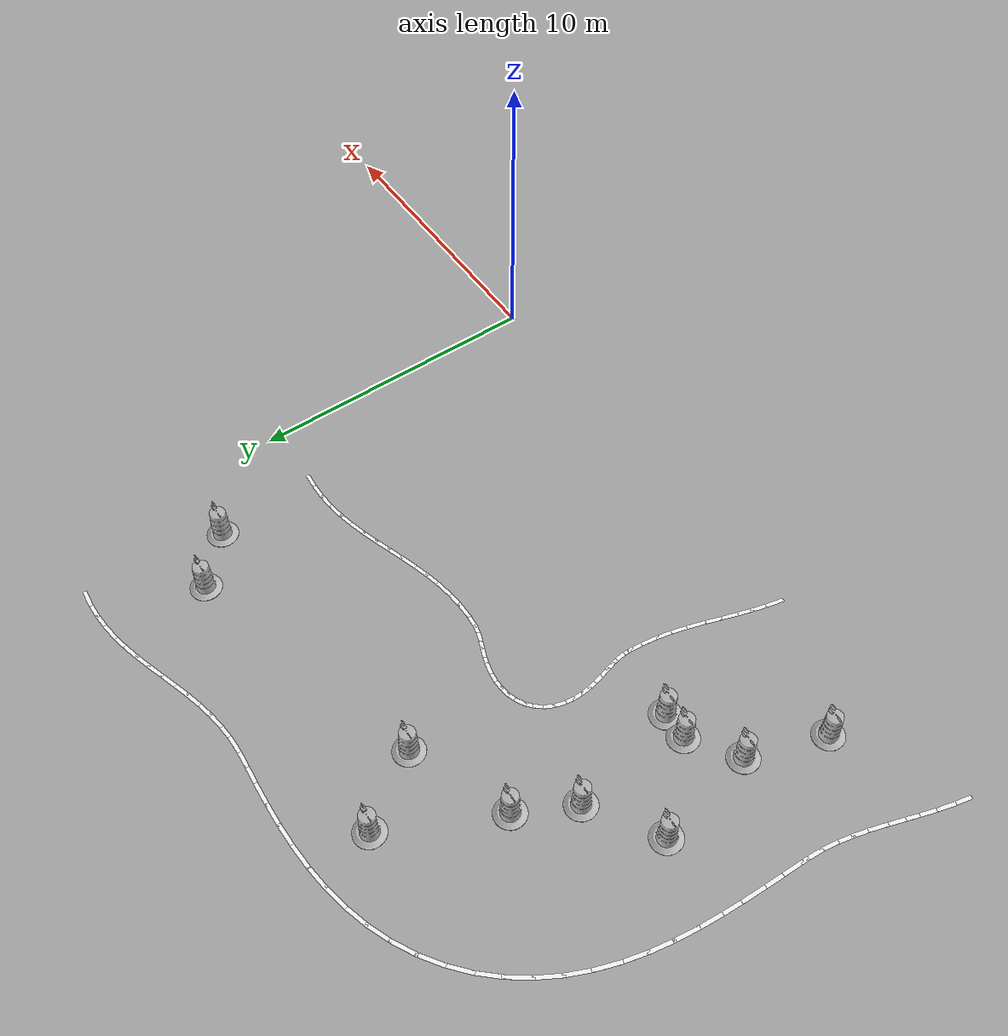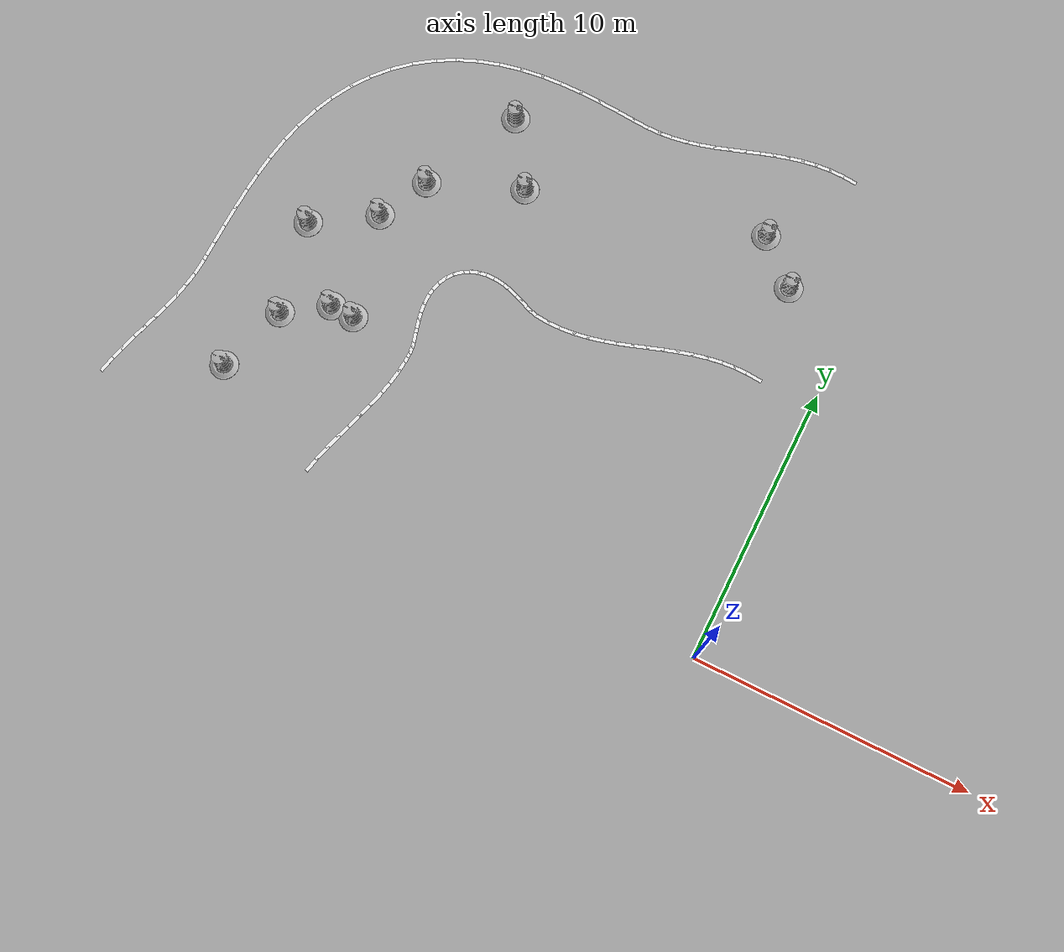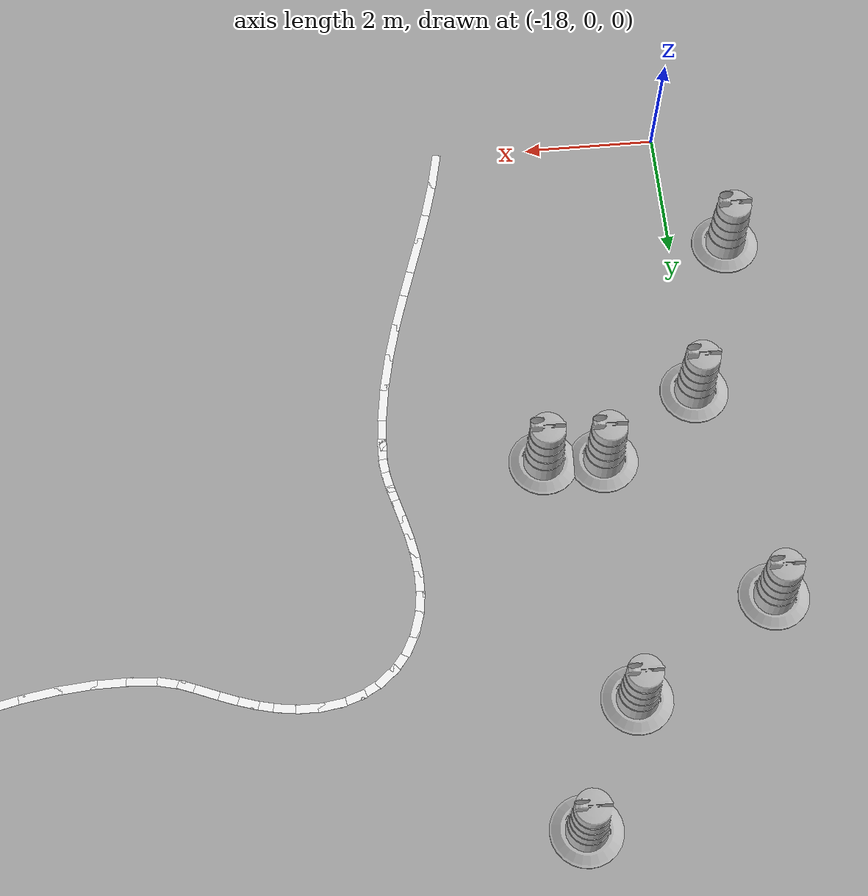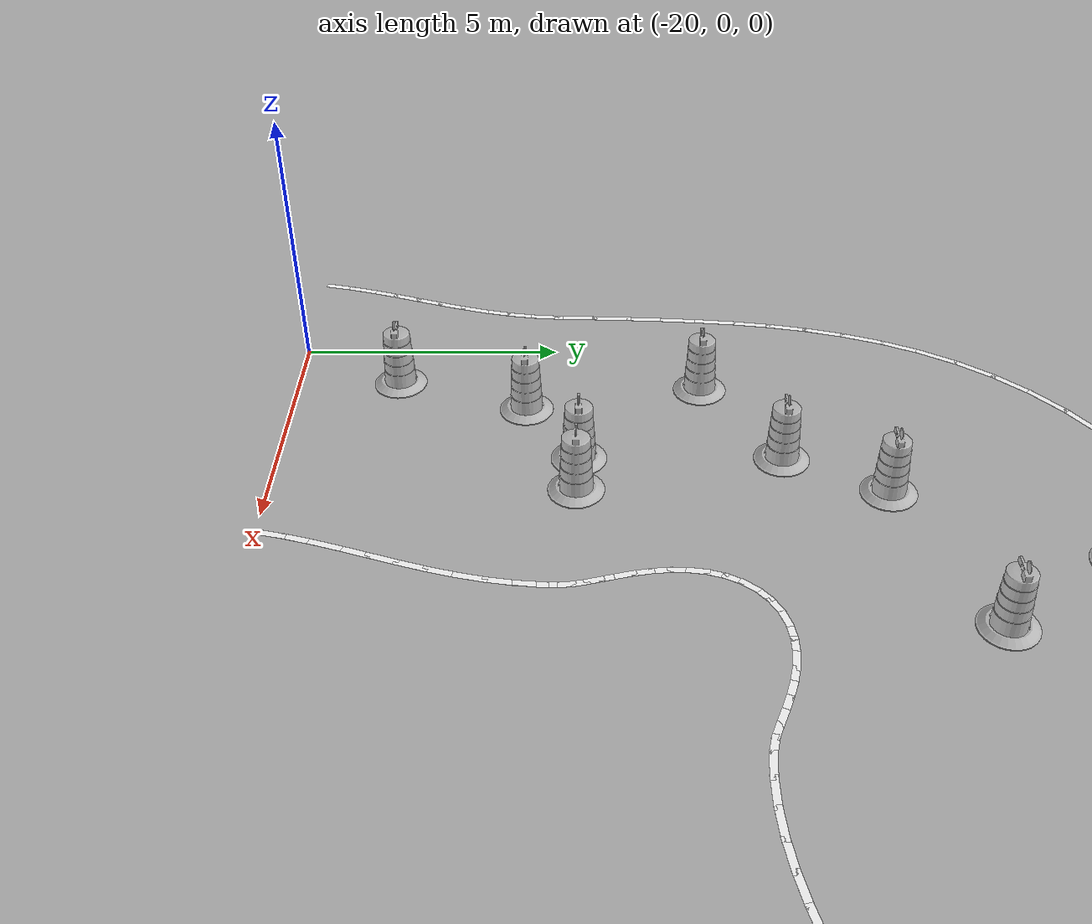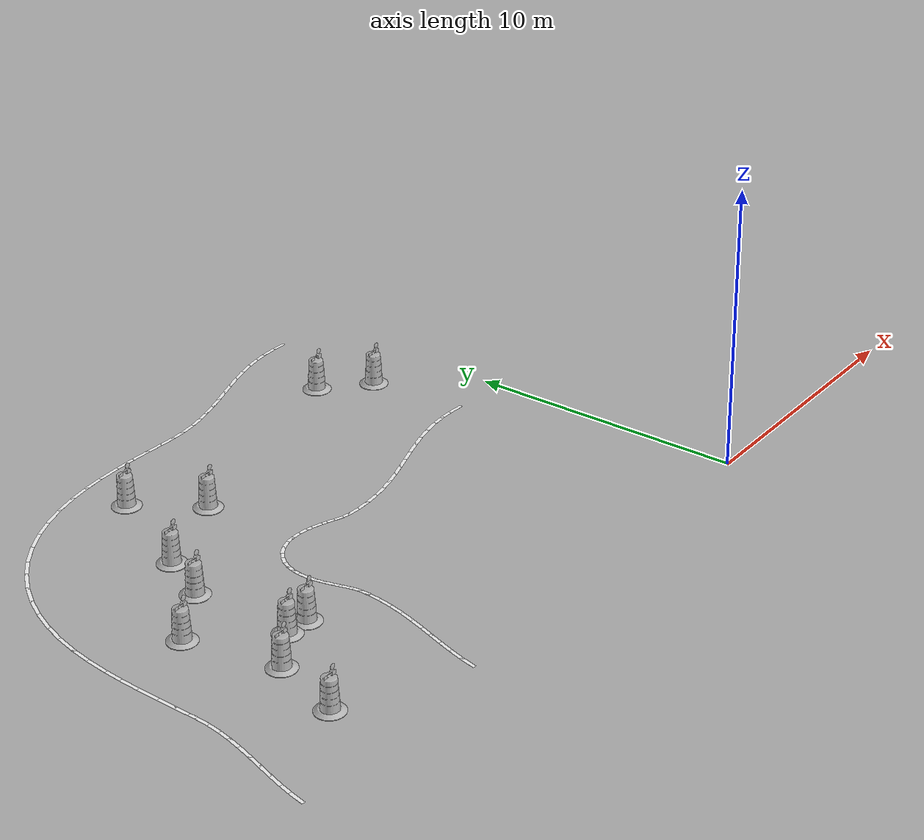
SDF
<sdf version="1.6">
 <model name="orange_igvc">
  <static>true</static>
  <link name="construction_barrel2">
   <pose>-12.34 12.27 0.05 0 0 0</pose>
   <visual name="visual">
    <geometry><mesh><uri>model://construction_barrel/meshes/construction_barrel.dae</uri></mesh></geometry>
   </visual>
   <collision name="collision">
    <geometry><mesh><uri>model://construction_barrel/meshes/construction_barrel.dae</uri></mesh></geometry>
   </collision>
  </link>
  <link name="construction_barrel3">
   <pose>-2.50 13.08 0.05 0 0 0</pose>
   <visual name="visual">
    <geometry><mesh><uri>model://construction_barrel/meshes/construction_barrel.dae</uri></mesh></geometry>
   </visual>
   <collision name="collision">
    <geometry><mesh><uri>model://construction_barrel/meshes/construction_barrel.dae</uri></mesh></geometry>
   </collision>
  </link>
  <link name="construction_barrel5">
   <pose>-16.51 5.51 0.05 0 0 0</pose>
   <visual name="visual">
    <geometry><mesh><uri>model://construction_barrel/meshes/construction_barrel.dae</uri></mesh></geometry>
   </visual>
   <collision name="collision">
    <geometry><mesh><uri>model://construction_barrel/meshes/construction_barrel.dae</uri></mesh></geometry>
   </collision>
  </link>
  <link name="construction_barrel8">
   <pose>-13.81 14.50 0.05 0 0 0</pose>
   <visual name="visual">
    <geometry><mesh><uri>model://construction_barrel/meshes/construction_barrel.dae</uri></mesh></geometry>
   </visual>
   <collision name="collision">
    <geometry><mesh><uri>model://construction_barrel/meshes/construction_barrel.dae</uri></mesh></geometry>
   </collision>
  </link>
  <link name="construction_barrel13">
   <pose>-15.63 5.47 0.05 0 0 0</pose>
   <visual name="visual">
    <geometry><mesh><uri>model://construction_barrel/meshes/construction_barrel.dae</uri></mesh></geometry>
   </visual>
   <collision name="collision">
    <geometry><mesh><uri>model://construction_barrel/meshes/construction_barrel.dae</uri></mesh></geometry>
   </collision>
  </link>
  <link name="construction_barrel14">
   <pose>-4.00 14.46 0.05 0 0 0</pose>
   <visual name="visual">
    <geometry><mesh><uri>model://construction_barrel/meshes/construction_barrel.dae</uri></mesh></geometry>
   </visual>
   <collision name="collision">
    <geometry><mesh><uri>model://construction_barrel/meshes/construction_barrel.dae</uri></mesh></geometry>
   </collision>
  </link>
  <link name="construction_barrel15">
   <pose>-18.85 2.00 0.05 0 0 0</pose>
   <visual name="visual">
    <geometry><mesh><uri>model://construction_barrel/meshes/construction_barrel.dae</uri></mesh></geometry>
   </visual>
   <collision name="collision">
    <geometry><mesh><uri>model://construction_barrel/meshes/construction_barrel.dae</uri></mesh></geometry>
   </collision>
  </link>
  <link name="construction_barrel17">
   <pose>-15.57 10.97 0.05 0 0 0</pose>
   <visual name="visual">
    <geometry><mesh><uri>model://construction_barrel/meshes/construction_barrel.dae</uri></mesh></geometry>
   </visual>
   <collision name="collision">
    <geometry><mesh><uri>model://construction_barrel/meshes/construction_barrel.dae</uri></mesh></geometry>
   </collision>
  </link>
  <link name="construction_barrel20">
   <pose>-18.00 4.50 0.05 0 0 0</pose>
   <visual name="visual">
    <geometry><mesh><uri>model://construction_barrel/meshes/construction_barrel.dae</uri></mesh></geometry>
   </visual>
   <collision name="collision">
    <geometry><mesh><uri>model://construction_barrel/meshes/construction_barrel.dae</uri></mesh></geometry>
   </collision>
  </link>
  <link name="construction_barrel26">
   <pose>-16.50 9.19 0.05 0 0 0</pose>
   <visual name="visual">
    <geometry><mesh><uri>model://construction_barrel/meshes/construction_barrel.dae</uri></mesh></geometry>
   </visual>
   <collision name="collision">
    <geometry><mesh><uri>model://construction_barrel/meshes/construction_barrel.dae</uri></mesh></geometry>
   </collision>
  </link>
  <link name="construction_barrel30">
   <pose>-18.64 7.83 0.05 0 0 0</pose>
   <visual name="visual">
    <geometry><mesh><uri>model://construction_barrel/meshes/construction_barrel.dae</uri></mesh></geometry>
   </visual>
   <collision name="collision">
    <geometry><mesh><uri>model://construction_barrel/meshes/construction_barrel.dae</uri></mesh></geometry>
   </collision>
  </link>
  <link name="white_line_inner_124">
   <pose>-2.2500000000000004 9.672851910128866 0.005 0 0 3.0576169555993298</pose>
   <visual name="visual">
    <geometry><box><size>0.601768174522384 0.127 0.001</size></box></geometry>
    <material><ambient>1.0 1.0 1.0 1.0</ambient><diffuse>1.0 1.0 1.0 1.0</diffuse></material>
   </visual>
  </link>
  <link name="white_line_inner_125">
   <pose>-2.7500000000000004 9.694874335370326 0.005 0 0 3.1376766256106103</pose>
   <visual name="visual">
    <geometry><box><size>0.6000038338432805 0.127 0.001</size></box></geometry>
    <material><ambient>1.0 1.0 1.0 1.0</ambient><diffuse>1.0 1.0 1.0 1.0</diffuse></material>
   </visual>
  </link>
  <link name="white_line_inner_126">
   <pose>-3.2500000000000004 9.676711340682628 0.005 0 0 -3.0651737335335905</pose>
   <visual name="visual">
    <geometry><box><size>0.6014635237781669 0.127 0.001</size></box></geometry>
    <material><ambient>1.0 1.0 1.0 1.0</ambient><diffuse>1.0 1.0 1.0 1.0</diffuse></material>
   </visual>
  </link>
  <link name="white_line_inner_127">
   <pose>-3.750000000000001 9.619413313929513 0.005 0 0 -2.9901373614739493</pose>
   <visual name="visual">
    <geometry><box><size>0.6057900033305842 0.127 0.001</size></box></geometry>
    <material><ambient>1.0 1.0 1.0 1.0</ambient><diffuse>1.0 1.0 1.0 1.0</diffuse></material>
   </visual>
  </link>
  <link name="white_line_inner_128">
   <pose>-4.250000000000001 9.52629386902501 0.005 0 0 -2.9251818994885785</pose>
   <visual name="visual">
    <geometry><box><size>0.6119413172228314 0.127 0.001</size></box></geometry>
    <material><ambient>1.0 1.0 1.0 1.0</ambient><diffuse>1.0 1.0 1.0 1.0</diffuse></material>
   </visual>
  </link>
  <link name="white_line_inner_129">
   <pose>-4.750000000000001 9.402738215648885 0.005 0 0 -2.873813252786454</pose>
   <visual name="visual">
    <geometry><box><size>0.6184781338331526 0.127 0.001</size></box></geometry>
    <material><ambient>1.0 1.0 1.0 1.0</ambient><diffuse>1.0 1.0 1.0 1.0</diffuse></material>
   </visual>
  </link>
  <link name="white_line_inner_130">
   <pose>-5.250000000000001 9.255891726083298 0.005 0 0 -2.838236810832129</pose>
   <visual name="visual">
    <geometry><box><size>0.6239226254668142 0.127 0.001</size></box></geometry>
    <material><ambient>1.0 1.0 1.0 1.0</ambient><diffuse>1.0 1.0 1.0 1.0</diffuse></material>
   </visual>
  </link>
  <link name="white_line_inner_131">
   <pose>-5.750000000000001 9.09424670972571 0.005 0 0 -2.8196353942522125</pose>
   <visual name="visual">
    <geometry><box><size>0.6270826048143486 0.127 0.001</size></box></geometry>
    <material><ambient>1.0 1.0 1.0 1.0</ambient><diffuse>1.0 1.0 1.0 1.0</diffuse></material>
   </visual>
  </link>
  <link name="white_line_inner_132">
   <pose>-6.250000000000001 8.927151292605728 0.005 0 0 -2.8185059129407306</pose>
   <visual name="visual">
    <geometry><box><size>0.6272815961340333 0.127 0.001</size></box></geometry>
    <material><ambient>1.0 1.0 1.0 1.0</ambient><diffuse>1.0 1.0 1.0 1.0</diffuse></material>
   </visual>
  </link>
  <link name="white_line_inner_133">
   <pose>-6.750000000000001 8.764268803995153 0.005 0 0 -2.834875762577788</pose>
   <visual name="visual">
    <geometry><box><size>0.6244773713326284 0.127 0.001</size></box></geometry>
    <material><ambient>1.0 1.0 1.0 1.0</ambient><diffuse>1.0 1.0 1.0 1.0</diffuse></material>
   </visual>
  </link>
  <link name="white_line_inner_134">
   <pose>-7.250000000000001 8.615018934434765 0.005 0 0 -2.8683167496561217</pose>
   <visual name="visual">
    <geometry><box><size>0.6192690677240825 0.127 0.001</size></box></geometry>
    <material><ambient>1.0 1.0 1.0 1.0</ambient><diffuse>1.0 1.0 1.0 1.0</diffuse></material>
   </visual>
  </link>
  <link name="white_line_inner_135">
   <pose>-7.75 8.488032983682471 0.005 0 0 -2.9177519845332434</pose>
   <visual name="visual">
    <geometry><box><size>0.6127931080864057 0.127 0.001</size></box></geometry>
    <material><ambient>1.0 1.0 1.0 1.0</ambient><diffuse>1.0 1.0 1.0 1.0</diffuse></material>
   </visual>
  </link>
  <link name="white_line_inner_136">
   <pose>-8.25 8.390654702250176 0.005 0 0 -2.9811267892766575</pose>
   <visual name="visual">
    <geometry><box><size>0.6065071194614153 0.127 0.001</size></box></geometry>
    <material><ambient>1.0 1.0 1.0 1.0</ambient><diffuse>1.0 1.0 1.0 1.0</diffuse></material>
   </visual>
  </link>
  <link name="white_line_inner_137">
   <pose>-8.75 8.328515593464664 0.005 0 0 -3.0551099678083866</pose>
   <visual name="visual">
    <geometry><box><size>0.6018756585177805 0.127 0.001</size></box></geometry>
    <material><ambient>1.0 1.0 1.0 1.0</ambient><diffuse>1.0 1.0 1.0 1.0</diffuse></material>
   </visual>
  </link>
  <link name="white_line_inner_138">
   <pose>-9.25 8.305209236845947 0.005 0 0 -3.1350662612397366</pose>
   <visual name="visual">
    <geometry><box><size>0.6000106486382625 0.127 0.001</size></box></geometry>
    <material><ambient>1.0 1.0 1.0 1.0</ambient><diffuse>1.0 1.0 1.0 1.0</diffuse></material>
   </visual>
  </link>
  <link name="white_line_inner_139">
   <pose>-9.713602797569356 8.322367802858984 0.005 0 0 3.0538506252254414</pose>
   <visual name="visual">
    <geometry><box><size>0.5288553428229928 0.127 0.001</size></box></geometry>
    <material><ambient>1.0 1.0 1.0 1.0</ambient><diffuse>1.0 1.0 1.0 1.0</diffuse></material>
   </visual>
  </link>
  <link name="white_line_inner_140">
   <pose>-10.070274580948903 8.375104621368095 0.005 0 0 2.9086262626357064</pose>
   <visual name="visual">
    <geometry><box><size>0.3940823590322562 0.127 0.001</size></box></geometry>
    <material><ambient>1.0 1.0 1.0 1.0</ambient><diffuse>1.0 1.0 1.0 1.0</diffuse></material>
   </visual>
  </link>
  <link name="white_line_inner_141">
   <pose>-10.326387945486001 8.453090532564477 0.005 0 0 2.770105400653497</pose>
   <visual name="visual">
    <geometry><box><size>0.3426395659456946 0.127 0.001</size></box></geometry>
    <material><ambient>1.0 1.0 1.0 1.0</ambient><diffuse>1.0 1.0 1.0 1.0</diffuse></material>
   </visual>
  </link>
  <link name="white_line_inner_142">
   <pose>-10.560929465551553 8.546993209474424 0.005 0 0 2.7521462002610124</pose>
   <visual name="visual">
    <geometry><box><size>0.36266262550651995 0.127 0.001</size></box></geometry>
    <material><ambient>1.0 1.0 1.0 1.0</ambient><diffuse>1.0 1.0 1.0 1.0</diffuse></material>
   </visual>
  </link>
  <link name="white_line_inner_143">
   <pose>-10.81338516836453 8.647603176896636 0.005 0 0 2.7719075156903052</pose>
   <visual name="visual">
    <geometry><box><size>0.3808939959306159 0.127 0.001</size></box></geometry>
    <material><ambient>1.0 1.0 1.0 1.0</ambient><diffuse>1.0 1.0 1.0 1.0</diffuse></material>
   </visual>
  </link>
  <link name="white_line_inner_144">
   <pose>-11.0845247629183 8.744498208252528 0.005 0 0 2.823561134537672</pose>
   <visual name="visual">
    <geometry><box><size>0.39516370019189573 0.127 0.001</size></box></geometry>
    <material><ambient>1.0 1.0 1.0 1.0</ambient><diffuse>1.0 1.0 1.0 1.0</diffuse></material>
   </visual>
  </link>
  <link name="white_line_inner_145">
   <pose>-11.37256931884701 8.826637090662224 0.005 0 0 2.902832526756519</pose>
   <visual name="visual">
    <geometry><box><size>0.40436117906563407 0.127 0.001</size></box></geometry>
    <material><ambient>1.0 1.0 1.0 1.0</ambient><diffuse>1.0 1.0 1.0 1.0</diffuse></material>
   </visual>
  </link>
  <link name="white_line_inner_146">
   <pose>-11.673213195591561 8.883287597967675 0.005 0 0 3.007180629829953</pose>
   <visual name="visual">
    <geometry><box><size>0.40834186015554697 0.127 0.001</size></box></geometry>
    <material><ambient>1.0 1.0 1.0 1.0</ambient><diffuse>1.0 1.0 1.0 1.0</diffuse></material>
   </visual>
  </link>
  <link name="white_line_inner_147">
   <pose>-11.979897585412603 8.904922676091761 0.005 0 0 3.13525767160218</pose>
   <visual name="visual">
    <geometry><box><size>0.40781424843107905 0.127 0.001</size></box></geometry>
    <material><ambient>1.0 1.0 1.0 1.0</ambient><diffuse>1.0 1.0 1.0 1.0</diffuse></material>
   </visual>
  </link>
  <link name="white_line_inner_148">
   <pose>-12.28431221419558 8.884006342436372 0.005 0 0 -2.997158387607068</pose>
   <visual name="visual">
    <geometry><box><size>0.40418855150047917 0.127 0.001</size></box></geometry>
    <material><ambient>1.0 1.0 1.0 1.0</ambient><diffuse>1.0 1.0 1.0 1.0</diffuse></material>
   </visual>
  </link>
  <link name="white_line_inner_149">
   <pose>-12.577080230746882 8.815601027071317 0.005 0 0 -2.8255794848120113</pose>
   <visual name="visual">
    <geometry><box><size>0.39933744038007524 0.127 0.001</size></box></geometry>
    <material><ambient>1.0 1.0 1.0 1.0</ambient><diffuse>1.0 1.0 1.0 1.0</diffuse></material>
   </visual>
  </link>
  <link name="white_line_inner_150">
   <pose>-12.848563893362147 8.69774443403763 0.005 0 0 -2.637157583504708</pose>
   <visual name="visual">
    <geometry><box><size>0.3952232234972317 0.127 0.001</size></box></geometry>
    <material><ambient>1.0 1.0 1.0 1.0</ambient><diffuse>1.0 1.0 1.0 1.0</diffuse></material>
   </visual>
  </link>
  <link name="white_line_inner_151">
   <pose>-13.089716945818617 8.53156498000289 0.005 0 0 -2.4386616089817856</pose>
   <visual name="visual">
    <geometry><box><size>0.393405110908013 0.127 0.001</size></box></geometry>
    <material><ambient>1.0 1.0 1.0 1.0</ambient><diffuse>1.0 1.0 1.0 1.0</diffuse></material>
   </visual>
  </link>
  <link name="white_line_inner_152">
   <pose>-13.292904655897734 8.321128559229065 0.005 0 0 -2.239075501990043</pose>
   <visual name="visual">
    <geometry><box><size>0.39456280766559093 0.127 0.001</size></box></geometry>
    <material><ambient>1.0 1.0 1.0 1.0</ambient><diffuse>1.0 1.0 1.0 1.0</diffuse></material>
   </visual>
  </link>
  <link name="white_line_inner_153">
   <pose>-13.452614838178523 8.073033628506131 0.005 0 0 -2.0476485757513094</pose>
   <visual name="visual">
    <geometry><box><size>0.3982638109100547 0.127 0.001</size></box></geometry>
    <material><ambient>1.0 1.0 1.0 1.0</ambient><diffuse>1.0 1.0 1.0 1.0</diffuse></material>
   </visual>
  </link>
  <link name="white_line_inner_154">
   <pose>-13.56599260343195 7.79579419648846 0.005 0 0 -1.871766379490987</pose>
   <visual name="visual">
    <geometry><box><size>0.40311327627026194 0.127 0.001</size></box></geometry>
    <material><ambient>1.0 1.0 1.0 1.0</ambient><diffuse>1.0 1.0 1.0 1.0</diffuse></material>
   </visual>
  </link>
  <link name="white_line_inner_155">
   <pose>-13.633147225235644 7.499069186280913 0.005 0 0 -1.7160098978005902</pose>
   <visual name="visual">
    <geometry><box><size>0.40719509808456467 0.127 0.001</size></box></geometry>
    <material><ambient>1.0 1.0 1.0 1.0</ambient><diffuse>1.0 1.0 1.0 1.0</diffuse></material>
   </visual>
  </link>
  <link name="white_line_inner_156">
   <pose>-13.65719997427604 7.192810107342216 0.005 0 0 -1.5826354726710725</pose>
   <visual name="visual">
    <geometry><box><size>0.40857790657088455 0.127 0.001</size></box></geometry>
    <material><ambient>1.0 1.0 1.0 1.0</ambient><diffuse>1.0 1.0 1.0 1.0</diffuse></material>
   </visual>
  </link>
  <link name="white_line_inner_157">
   <pose>-13.644065183192827 6.886405809549362 0.005 0 0 -1.4727629686647457</pose>
   <visual name="visual">
    <geometry><box><size>0.40572020659450225 0.127 0.001</size></box></geometry>
    <material><ambient>1.0 1.0 1.0 1.0</ambient><diffuse>1.0 1.0 1.0 1.0</diffuse></material>
   </visual>
  </link>
  <link name="white_line_inner_158">
   <pose>-13.601981037447352 6.587902693253406 0.005 0 0 -1.3875804653101769</pose>
   <visual name="visual">
    <geometry><box><size>0.3977371831655224 0.127 0.001</size></box></geometry>
    <material><ambient>1.0 1.0 1.0 1.0</ambient><diffuse>1.0 1.0 1.0 1.0</diffuse></material>
   </visual>
  </link>
  <link name="white_line_inner_159">
   <pose>-13.540829429660011 6.303371171637298 0.005 0 0 -1.329293543671261</pose>
   <visual name="visual">
    <geometry><box><size>0.38456736633358957 0.127 0.001</size></box></geometry>
    <material><ambient>1.0 1.0 1.0 1.0</ambient><diffuse>1.0 1.0 1.0 1.0</diffuse></material>
   </visual>
  </link>
  <link name="white_line_inner_160">
   <pose>-13.471303578644974 6.036475139675039 0.005 0 0 -1.3017580223139822</pose>
   <visual name="visual">
    <geometry><box><size>0.3670910128868857 0.127 0.001</size></box></geometry>
    <material><ambient>1.0 1.0 1.0 1.0</ambient><diffuse>1.0 1.0 1.0 1.0</diffuse></material>
   </visual>
  </link>
  <link name="white_line_inner_161">
   <pose>-13.40399622666563 5.788282002281676 0.005 0 0 -1.3105333067080598</pose>
   <visual name="visual">
    <geometry><box><size>0.3472294486733821 0.127 0.001</size></box></geometry>
    <material><ambient>1.0 1.0 1.0 1.0</ambient><diffuse>1.0 1.0 1.0 1.0</diffuse></material>
   </visual>
  </link>
  <link name="white_line_inner_162">
   <pose>-13.348488792359472 5.557328228454699 0.005 0 0 -1.3613862551375966</pose>
   <visual name="visual">
    <geometry><box><size>0.32798483167551024 0.127 0.001</size></box></geometry>
    <material><ambient>1.0 1.0 1.0 1.0</ambient><diffuse>1.0 1.0 1.0 1.0</diffuse></material>
   </visual>
  </link>
  <link name="white_line_inner_163">
   <pose>-13.312522170661211 5.3399315118116935 0.005 0 0 -1.455445030097507</pose>
   <visual name="visual">
    <geometry><box><size>0.3132061015872888 0.127 0.001</size></box></geometry>
    <material><ambient>1.0 1.0 1.0 1.0</ambient><diffuse>1.0 1.0 1.0 1.0</diffuse></material>
   </visual>
  </link>
  <link name="white_line_inner_164">
   <pose>-13.302713433660536 5.067079423313393 0.005 0 0 -1.5855344091824537</pose>
   <visual name="visual">
    <geometry><box><size>0.43395122342600234 0.127 0.001</size></box></geometry>
    <material><ambient>1.0 1.0 1.0 1.0</ambient><diffuse>1.0 1.0 1.0 1.0</diffuse></material>
   </visual>
  </link>
  <link name="white_line_inner_165">
   <pose>-13.304966166510448 4.948919785256041 0.005 0 0 1.5665322625443823</pose>
   <visual name="visual">
    <geometry><box><size>0.19759656627704347 0.127 0.001</size></box></geometry>
    <material><ambient>1.0 1.0 1.0 1.0</ambient><diffuse>1.0 1.0 1.0 1.0</diffuse></material>
   </visual>
  </link>
  <link name="white_line_inner_166">
   <pose>-13.324534821585214 4.748858812382045 0.005 0 0 -1.6500993558773818</pose>
   <visual name="visual">
    <geometry><box><size>0.5992868020947621 0.127 0.001</size></box></geometry>
    <material><ambient>1.0 1.0 1.0 1.0</ambient><diffuse>1.0 1.0 1.0 1.0</diffuse></material>
   </visual>
  </link>
  <link name="white_line_inner_167">
   <pose>-13.383048192210342 4.25 0.005 0 0 -1.7245204291973577</pose>
   <visual name="visual">
    <geometry><box><size>0.605966509006095 0.127 0.001</size></box></geometry>
    <material><ambient>1.0 1.0 1.0 1.0</ambient><diffuse>1.0 1.0 1.0 1.0</diffuse></material>
   </visual>
  </link>
  <link name="white_line_inner_168">
   <pose>-13.477240906489255 3.75 0.005 0 0 -1.7890860523145438</pose>
   <visual name="visual">
    <geometry><box><size>0.6121537913116326 0.127 0.001</size></box></geometry>
    <material><ambient>1.0 1.0 1.0 1.0</ambient><diffuse>1.0 1.0 1.0 1.0</diffuse></material>
   </visual>
  </link>
  <link name="white_line_inner_169">
   <pose>-13.601665408913458 3.25 0.005 0 0 -1.8399746292148773</pose>
   <visual name="visual">
    <geometry><box><size>0.6186777176241935 0.127 0.001</size></box></geometry>
    <material><ambient>1.0 1.0 1.0 1.0</ambient><diffuse>1.0 1.0 1.0 1.0</diffuse></material>
   </visual>
  </link>
  <link name="white_line_inner_170">
   <pose>-13.749126080613637 2.75 0.005 0 0 -1.8750189277990372</pose>
   <visual name="visual">
    <geometry><box><size>0.6240650064376616 0.127 0.001</size></box></geometry>
    <material><ambient>1.0 1.0 1.0 1.0</ambient><diffuse>1.0 1.0 1.0 1.0</diffuse></material>
   </visual>
  </link>
  <link name="white_line_inner_171">
   <pose>-13.911095093299586 2.25 0.005 0 0 -1.8930631509560483</pose>
   <visual name="visual">
    <geometry><box><size>0.6271370619164037 0.127 0.001</size></box></geometry>
    <material><ambient>1.0 1.0 1.0 1.0</ambient><diffuse>1.0 1.0 1.0 1.0</diffuse></material>
   </visual>
  </link>
  <link name="white_line_inner_172">
   <pose>-14.078205583843708 1.75 0.005 0 0 -1.8936278983853347</pose>
   <visual name="visual">
    <geometry><box><size>0.6272365686535137 0.127 0.001</size></box></geometry>
    <material><ambient>1.0 1.0 1.0 1.0</ambient><diffuse>1.0 1.0 1.0 1.0</diffuse></material>
   </visual>
  </link>
  <link name="white_line_inner_173">
   <pose>-14.240793351259931 1.25 0.005 0 0 -1.876699475939822</pose>
   <visual name="visual">
    <geometry><box><size>0.6243424107691669 0.127 0.001</size></box></geometry>
    <material><ambient>1.0 1.0 1.0 1.0</ambient><diffuse>1.0 1.0 1.0 1.0</diffuse></material>
   </visual>
  </link>
  <link name="white_line_inner_174">
   <pose>-14.389455749089187 0.75 0.005 0 0 -1.842722931991248</pose>
   <visual name="visual">
    <geometry><box><size>0.6190732307078661 0.127 0.001</size></box></geometry>
    <material><ambient>1.0 1.0 1.0 1.0</ambient><diffuse>1.0 1.0 1.0 1.0</diffuse></material>
   </visual>
  </link>
  <link name="white_line_inner_175">
   <pose>-14.515595451771508 0.25 0.005 0 0 -1.7928011004252076</pose>
   <visual name="visual">
    <geometry><box><size>0.612579738341811 0.127 0.001</size></box></geometry>
    <material><ambient>1.0 1.0 1.0 1.0</ambient><diffuse>1.0 1.0 1.0 1.0</diffuse></material>
   </visual>
  </link>
  <link name="white_line_outer_124">
   <pose>-2.249999999999999 17.672851910128866 0.005 0 0 3.0576169555993298</pose>
   <visual name="visual">
    <geometry><box><size>0.601768174522384 0.127 0.001</size></box></geometry>
    <material><ambient>1.0 1.0 1.0 1.0</ambient><diffuse>1.0 1.0 1.0 1.0</diffuse></material>
   </visual>
  </link>
  <link name="white_line_outer_125">
   <pose>-2.749999999999999 17.694874335370326 0.005 0 0 3.1376766256106103</pose>
   <visual name="visual">
    <geometry><box><size>0.6000038338432805 0.127 0.001</size></box></geometry>
    <material><ambient>1.0 1.0 1.0 1.0</ambient><diffuse>1.0 1.0 1.0 1.0</diffuse></material>
   </visual>
  </link>
  <link name="white_line_outer_126">
   <pose>-3.249999999999999 17.67671134068263 0.005 0 0 -3.0651737335335905</pose>
   <visual name="visual">
    <geometry><box><size>0.6014635237781669 0.127 0.001</size></box></geometry>
    <material><ambient>1.0 1.0 1.0 1.0</ambient><diffuse>1.0 1.0 1.0 1.0</diffuse></material>
   </visual>
  </link>
  <link name="white_line_outer_127">
   <pose>-3.749999999999999 17.619413313929513 0.005 0 0 -2.9901373614739457</pose>
   <visual name="visual">
    <geometry><box><size>0.6057900033305841 0.127 0.001</size></box></geometry>
    <material><ambient>1.0 1.0 1.0 1.0</ambient><diffuse>1.0 1.0 1.0 1.0</diffuse></material>
   </visual>
  </link>
  <link name="white_line_outer_128">
   <pose>-4.249999999999999 17.526293869025007 0.005 0 0 -2.9251818994885785</pose>
   <visual name="visual">
    <geometry><box><size>0.6119413172228314 0.127 0.001</size></box></geometry>
    <material><ambient>1.0 1.0 1.0 1.0</ambient><diffuse>1.0 1.0 1.0 1.0</diffuse></material>
   </visual>
  </link>
  <link name="white_line_outer_129">
   <pose>-4.749999999999999 17.40273821564888 0.005 0 0 -2.8738132527864573</pose>
   <visual name="visual">
    <geometry><box><size>0.6184781338331522 0.127 0.001</size></box></geometry>
    <material><ambient>1.0 1.0 1.0 1.0</ambient><diffuse>1.0 1.0 1.0 1.0</diffuse></material>
   </visual>
  </link>
  <link name="white_line_outer_130">
   <pose>-5.249999999999999 17.2558917260833 0.005 0 0 -2.8382368108321323</pose>
   <visual name="visual">
    <geometry><box><size>0.6239226254668137 0.127 0.001</size></box></geometry>
    <material><ambient>1.0 1.0 1.0 1.0</ambient><diffuse>1.0 1.0 1.0 1.0</diffuse></material>
   </visual>
  </link>
  <link name="white_line_outer_131">
   <pose>-5.749999999999999 17.09424670972571 0.005 0 0 -2.8196353942522094</pose>
   <visual name="visual">
    <geometry><box><size>0.6270826048143492 0.127 0.001</size></box></geometry>
    <material><ambient>1.0 1.0 1.0 1.0</ambient><diffuse>1.0 1.0 1.0 1.0</diffuse></material>
   </visual>
  </link>
  <link name="white_line_outer_132">
   <pose>-6.249999999999999 16.92715129260573 0.005 0 0 -2.8185059129407275</pose>
   <visual name="visual">
    <geometry><box><size>0.6272815961340339 0.127 0.001</size></box></geometry>
    <material><ambient>1.0 1.0 1.0 1.0</ambient><diffuse>1.0 1.0 1.0 1.0</diffuse></material>
   </visual>
  </link>
  <link name="white_line_outer_133">
   <pose>-6.749999999999999 16.76426880399515 0.005 0 0 -2.834875762577788</pose>
   <visual name="visual">
    <geometry><box><size>0.6244773713326284 0.127 0.001</size></box></geometry>
    <material><ambient>1.0 1.0 1.0 1.0</ambient><diffuse>1.0 1.0 1.0 1.0</diffuse></material>
   </visual>
  </link>
  <link name="white_line_outer_134">
   <pose>-7.249999999999999 16.615018934434765 0.005 0 0 -2.8683167496561253</pose>
   <visual name="visual">
    <geometry><box><size>0.6192690677240821 0.127 0.001</size></box></geometry>
    <material><ambient>1.0 1.0 1.0 1.0</ambient><diffuse>1.0 1.0 1.0 1.0</diffuse></material>
   </visual>
  </link>
  <link name="white_line_outer_135">
   <pose>-7.749999999999999 16.488032983682473 0.005 0 0 -2.917751984533244</pose>
   <visual name="visual">
    <geometry><box><size>0.6127931080864066 0.127 0.001</size></box></geometry>
    <material><ambient>1.0 1.0 1.0 1.0</ambient><diffuse>1.0 1.0 1.0 1.0</diffuse></material>
   </visual>
  </link>
  <link name="white_line_outer_136">
   <pose>-8.25 16.390654702250174 0.005 0 0 -2.9811267892766575</pose>
   <visual name="visual">
    <geometry><box><size>0.6065071194614162 0.127 0.001</size></box></geometry>
    <material><ambient>1.0 1.0 1.0 1.0</ambient><diffuse>1.0 1.0 1.0 1.0</diffuse></material>
   </visual>
  </link>
  <link name="white_line_outer_137">
   <pose>-8.75 16.328515593464665 0.005 0 0 -3.0551099678083866</pose>
   <visual name="visual">
    <geometry><box><size>0.6018756585177805 0.127 0.001</size></box></geometry>
    <material><ambient>1.0 1.0 1.0 1.0</ambient><diffuse>1.0 1.0 1.0 1.0</diffuse></material>
   </visual>
  </link>
  <link name="white_line_outer_138">
   <pose>-9.25 16.305209236845947 0.005 0 0 -3.1350662612397366</pose>
   <visual name="visual">
    <geometry><box><size>0.6000106486382625 0.127 0.001</size></box></geometry>
    <material><ambient>1.0 1.0 1.0 1.0</ambient><diffuse>1.0 1.0 1.0 1.0</diffuse></material>
   </visual>
  </link>
  <link name="white_line_outer_139">
   <pose>-9.776095168247213 16.32187961101846 0.005 0 0 3.0754007731227877</pose>
   <visual name="visual">
    <geometry><box><size>0.6534022224965139 0.127 0.001</size></box></geometry>
    <material><ambient>1.0 1.0 1.0 1.0</ambient><diffuse>1.0 1.0 1.0 1.0</diffuse></material>
   </visual>
  </link>
  <link name="white_line_outer_140">
   <pose>-10.382604222996278 16.366806472327966 0.005 0 0 3.061186037374524</pose>
   <visual name="visual">
    <geometry><box><size>0.7629697425270274 0.127 0.001</size></box></geometry>
    <material><ambient>1.0 1.0 1.0 1.0</ambient><diffuse>1.0 1.0 1.0 1.0</diffuse></material>
   </visual>
  </link>
  <link name="white_line_outer_141">
   <pose>-11.074924150396434 16.41407124428219 0.005 0 0 3.0846232475055317</pose>
   <visual name="visual">
    <geometry><box><size>0.8249882431082056 0.127 0.001</size></box></geometry>
    <material><ambient>1.0 1.0 1.0 1.0</ambient><diffuse>1.0 1.0 1.0 1.0</diffuse></material>
   </visual>
  </link>
  <link name="white_line_outer_142">
   <pose>-11.805241586141543 16.44567713079676 0.005 0 0 3.111835855252569</pose>
   <visual name="visual">
    <geometry><box><size>0.8371491262426379 0.127 0.001</size></box></geometry>
    <material><ambient>1.0 1.0 1.0 1.0</ambient><diffuse>1.0 1.0 1.0 1.0</diffuse></material>
   </visual>
  </link>
  <link name="white_line_outer_143">
   <pose>-12.548614192431696 16.453146116144236 0.005 0 0 -3.132266639041774</pose>
   <visual name="visual">
    <geometry><box><size>0.8499550361502137 0.127 0.001</size></box></geometry>
    <material><ambient>1.0 1.0 1.0 1.0</ambient><diffuse>1.0 1.0 1.0 1.0</diffuse></material>
   </visual>
  </link>
  <link name="white_line_outer_144">
   <pose>-13.303894658257917 16.426419687287797 0.005 0 0 -3.0805896639282424</pose>
   <visual name="visual">
    <geometry><box><size>0.8620560132881225 0.127 0.001</size></box></geometry>
    <material><ambient>1.0 1.0 1.0 1.0</ambient><diffuse>1.0 1.0 1.0 1.0</diffuse></material>
   </visual>
  </link>
  <link name="white_line_outer_145">
   <pose>-14.067413493512724 16.35493937050417 0.005 0 0 -3.0163360469599456</pose>
   <visual name="visual">
    <geometry><box><size>0.8724508178337435 0.127 0.001</size></box></geometry>
    <material><ambient>1.0 1.0 1.0 1.0</ambient><diffuse>1.0 1.0 1.0 1.0</diffuse></material>
   </visual>
  </link>
  <link name="white_line_outer_146">
   <pose>-14.833008340751501 16.228572819320675 0.005 0 0 -2.9400852093080543</pose>
   <visual name="visual">
    <geometry><box><size>0.880584902113279 0.127 0.001</size></box></geometry>
    <material><ambient>1.0 1.0 1.0 1.0</ambient><diffuse>1.0 1.0 1.0 1.0</diffuse></material>
   </visual>
  </link>
  <link name="white_line_outer_147">
   <pose>-15.592304768645167 16.038507657356995 0.005 0 0 -2.8528664073936585</pose>
   <visual name="visual">
    <geometry><box><size>0.8863515110260654 0.127 0.001</size></box></geometry>
    <material><ambient>1.0 1.0 1.0 1.0</ambient><diffuse>1.0 1.0 1.0 1.0</diffuse></material>
   </visual>
  </link>
  <link name="white_line_outer_148">
   <pose>-16.33522506275648 15.778034586922129 0.005 0 0 -2.7561126890576455</pose>
   <visual name="visual">
    <geometry><box><size>0.8900107802634626 0.127 0.001</size></box></geometry>
    <material><ambient>1.0 1.0 1.0 1.0</ambient><diffuse>1.0 1.0 1.0 1.0</diffuse></material>
   </visual>
  </link>
  <link name="white_line_outer_149">
   <pose>-17.05068001665282 15.443151502016455 0.005 0 0 -2.6516492816741453</pose>
   <visual name="visual">
    <geometry><box><size>0.8920486337096275 0.127 0.001</size></box></geometry>
    <material><ambient>1.0 1.0 1.0 1.0</ambient><diffuse>1.0 1.0 1.0 1.0</diffuse></material>
   </visual>
  </link>
  <link name="white_line_outer_150">
   <pose>-17.72738130518507 15.03293669666839 0.005 0 0 -2.541673948521205</pose>
   <visual name="visual">
    <geometry><box><size>0.893004111118568 0.127 0.001</size></box></geometry>
    <material><ambient>1.0 1.0 1.0 1.0</ambient><diffuse>1.0 1.0 1.0 1.0</diffuse></material>
   </visual>
  </link>
  <link name="white_line_outer_151">
   <pose>-18.354700305973026 14.549660240108068 0.005 0 0 -2.4286931411067956</pose>
   <visual name="visual">
    <geometry><box><size>0.8933006012754412 0.127 0.001</size></box></geometry>
    <material><ambient>1.0 1.0 1.0 1.0</ambient><diffuse>1.0 1.0 1.0 1.0</diffuse></material>
   </visual>
  </link>
  <link name="white_line_outer_152">
   <pose>-18.92349431703392 13.99862628360637 0.005 0 0 -2.315399458109768</pose>
   <visual name="visual">
    <geometry><box><size>0.893119077127866 0.127 0.001</size></box></geometry>
    <material><ambient>1.0 1.0 1.0 1.0</ambient><diffuse>1.0 1.0 1.0 1.0</diffuse></material>
   </visual>
  </link>
  <link name="white_line_outer_153">
   <pose>-19.42682346816548 13.38776331004145 0.005 0 0 -2.2045056640759237</pose>
   <visual name="visual">
    <geometry><box><size>0.8923446750669491 0.127 0.001</size></box></geometry>
    <material><ambient>1.0 1.0 1.0 1.0</ambient><diffuse>1.0 1.0 1.0 1.0</diffuse></material>
   </visual>
  </link>
  <link name="white_line_outer_154">
   <pose>-19.860491045418822 12.72700192951168 0.005 0 0 -2.0985736744407015</pose>
   <visual name="visual">
    <geometry><box><size>0.8906005623780086 0.127 0.001</size></box></geometry>
    <material><ambient>1.0 1.0 1.0 1.0</ambient><diffuse>1.0 1.0 1.0 1.0</diffuse></material>
   </visual>
  </link>
  <link name="white_line_outer_155">
   <pose>-20.22335559751 12.027498710123385 0.005 0 0 -1.999879658607879</pose>
   <visual name="visual">
    <geometry><box><size>0.8873602015423275 0.127 0.001</size></box></geometry>
    <material><ambient>1.0 1.0 1.0 1.0</ambient><diffuse>1.0 1.0 1.0 1.0</diffuse></material>
   </visual>
  </link>
  <link name="white_line_outer_156">
   <pose>-20.517383654175916 11.300778001622625 0.005 0 0 -1.9103370007916343</pose>
   <visual name="visual">
    <geometry><box><size>0.8821097979194021 0.127 0.001</size></box></geometry>
    <material><ambient>1.0 1.0 1.0 1.0</ambient><diffuse>1.0 1.0 1.0 1.0</diffuse></material>
   </visual>
  </link>
  <link name="white_line_outer_157">
   <pose>-20.747435300257493 10.557870547551886 0.005 0 0 -1.8314691660157585</pose>
   <visual name="visual">
    <geometry><box><size>0.8745234125219349 0.127 0.001</size></box></geometry>
    <material><ambient>1.0 1.0 1.0 1.0</ambient><diffuse>1.0 1.0 1.0 1.0</diffuse></material>
   </visual>
  </link>
  <link name="white_line_outer_158">
   <pose>-20.9207990833832 9.808527283746203 0.005 0 0 -1.7644000387850838</pose>
   <visual name="visual">
    <geometry><box><size>0.8646140864669503 0.127 0.001</size></box></geometry>
    <material><ambient>1.0 1.0 1.0 1.0</ambient><diffuse>1.0 1.0 1.0 1.0</diffuse></material>
   </visual>
  </link>
  <link name="white_line_outer_159">
   <pose>-21.046515576621832 9.06057914451649 0.005 0 0 -1.7098192293617476</pose>
   <visual name="visual">
    <geometry><box><size>0.8528306805367468 0.127 0.001</size></box></geometry>
    <material><ambient>1.0 1.0 1.0 1.0</ambient><diffuse>1.0 1.0 1.0 1.0</diffuse></material>
   </visual>
  </link>
  <link name="white_line_outer_160">
   <pose>-21.134548282852045 8.319499656811347 0.005 0 0 -1.6678866818970624</pose>
   <visual name="visual">
    <geometry><box><size>0.8400771456602992 0.127 0.001</size></box></geometry>
    <material><ambient>1.0 1.0 1.0 1.0</ambient><diffuse>1.0 1.0 1.0 1.0</diffuse></material>
   </visual>
  </link>
  <link name="white_line_outer_161">
   <pose>-21.19487468154297 7.588207901792872 0.005 0 0 -1.6380663420914046</pose>
   <visual name="visual">
    <geometry><box><size>0.8276375594079309 0.127 0.001</size></box></geometry>
    <material><ambient>1.0 1.0 1.0 1.0</ambient><diffuse>1.0 1.0 1.0 1.0</diffuse></material>
   </visual>
  </link>
  <link name="white_line_outer_162">
   <pose>-21.236577784267137 6.867126838221962 0.005 0 0 -1.618924942561283</pose>
   <visual name="visual">
    <geometry><box><size>0.8170005764644012 0.127 0.001</size></box></geometry>
    <material><ambient>1.0 1.0 1.0 1.0</ambient><diffuse>1.0 1.0 1.0 1.0</diffuse></material>
   </visual>
  </link>
  <link name="white_line_outer_163">
   <pose>-21.267018880892472 6.154488096293821 0.005 0 0 -1.607991126717312</pose>
   <visual name="visual">
    <geometry><box><size>0.8095979553208158 0.127 0.001</size></box></geometry>
    <material><ambient>1.0 1.0 1.0 1.0</ambient><diffuse>1.0 1.0 1.0 1.0</diffuse></material>
   </visual>
  </link>
  <link name="white_line_outer_164">
   <pose>-21.290187581802684 5.491591315453419 0.005 0 0 -1.6031355803994418</pose>
   <visual name="visual">
    <geometry><box><size>0.7170090118577628 0.127 0.001</size></box></geometry>
    <material><ambient>1.0 1.0 1.0 1.0</ambient><diffuse>1.0 1.0 1.0 1.0</diffuse></material>
   </visual>
  </link>
  <link name="white_line_outer_165">
   <pose>-21.302459895642528 5.092427285951633 0.005 0 0 -1.5960852119430076</pose>
   <visual name="visual">
    <geometry><box><size>0.28169975938888164 0.127 0.001</size></box></geometry>
    <material><ambient>1.0 1.0 1.0 1.0</ambient><diffuse>1.0 1.0 1.0 1.0</diffuse></material>
   </visual>
  </link>
  <link name="white_line_outer_166">
   <pose>-21.324534348991364 4.750803227608429 0.005 0 0 -1.649488956592061</pose>
   <visual name="visual">
    <geometry><box><size>0.6031635791988741 0.127 0.001</size></box></geometry>
    <material><ambient>1.0 1.0 1.0 1.0</ambient><diffuse>1.0 1.0 1.0 1.0</diffuse></material>
   </visual>
  </link>
  <link name="white_line_outer_167">
   <pose>-21.383048192210342 4.25 0.005 0 0 -1.7245204291973577</pose>
   <visual name="visual">
    <geometry><box><size>0.605966509006095 0.127 0.001</size></box></geometry>
    <material><ambient>1.0 1.0 1.0 1.0</ambient><diffuse>1.0 1.0 1.0 1.0</diffuse></material>
   </visual>
  </link>
  <link name="white_line_outer_168">
   <pose>-21.477240906489257 3.75 0.005 0 0 -1.7890860523145438</pose>
   <visual name="visual">
    <geometry><box><size>0.6121537913116326 0.127 0.001</size></box></geometry>
    <material><ambient>1.0 1.0 1.0 1.0</ambient><diffuse>1.0 1.0 1.0 1.0</diffuse></material>
   </visual>
  </link>
  <link name="white_line_outer_169">
   <pose>-21.60166540891346 3.25 0.005 0 0 -1.8399746292148773</pose>
   <visual name="visual">
    <geometry><box><size>0.6186777176241935 0.127 0.001</size></box></geometry>
    <material><ambient>1.0 1.0 1.0 1.0</ambient><diffuse>1.0 1.0 1.0 1.0</diffuse></material>
   </visual>
  </link>
  <link name="white_line_outer_170">
   <pose>-21.749126080613635 2.75 0.005 0 0 -1.8750189277990372</pose>
   <visual name="visual">
    <geometry><box><size>0.6240650064376616 0.127 0.001</size></box></geometry>
    <material><ambient>1.0 1.0 1.0 1.0</ambient><diffuse>1.0 1.0 1.0 1.0</diffuse></material>
   </visual>
  </link>
  <link name="white_line_outer_171">
   <pose>-21.911095093299586 2.25 0.005 0 0 -1.8930631509560516</pose>
   <visual name="visual">
    <geometry><box><size>0.6271370619164044 0.127 0.001</size></box></geometry>
    <material><ambient>1.0 1.0 1.0 1.0</ambient><diffuse>1.0 1.0 1.0 1.0</diffuse></material>
   </visual>
  </link>
  <link name="white_line_outer_172">
   <pose>-22.07820558384371 1.75 0.005 0 0 -1.8936278983853316</pose>
   <visual name="visual">
    <geometry><box><size>0.6272365686535132 0.127 0.001</size></box></geometry>
    <material><ambient>1.0 1.0 1.0 1.0</ambient><diffuse>1.0 1.0 1.0 1.0</diffuse></material>
   </visual>
  </link>
  <link name="white_line_outer_173">
   <pose>-22.24079335125993 1.25 0.005 0 0 -1.8766994759398186</pose>
   <visual name="visual">
    <geometry><box><size>0.6243424107691663 0.127 0.001</size></box></geometry>
    <material><ambient>1.0 1.0 1.0 1.0</ambient><diffuse>1.0 1.0 1.0 1.0</diffuse></material>
   </visual>
  </link>
  <link name="white_line_outer_174">
   <pose>-22.389455749089187 0.75 0.005 0 0 -1.8427229319912513</pose>
   <visual name="visual">
    <geometry><box><size>0.6190732307078667 0.127 0.001</size></box></geometry>
    <material><ambient>1.0 1.0 1.0 1.0</ambient><diffuse>1.0 1.0 1.0 1.0</diffuse></material>
   </visual>
  </link>
  <link name="white_line_outer_175">
   <pose>-22.51559545177151 0.25 0.005 0 0 -1.7928011004252076</pose>
   <visual name="visual">
    <geometry><box><size>0.612579738341811 0.127 0.001</size></box></geometry>
    <material><ambient>1.0 1.0 1.0 1.0</ambient><diffuse>1.0 1.0 1.0 1.0</diffuse></material>
   </visual>
  </link>
 </model>
</sdf>
